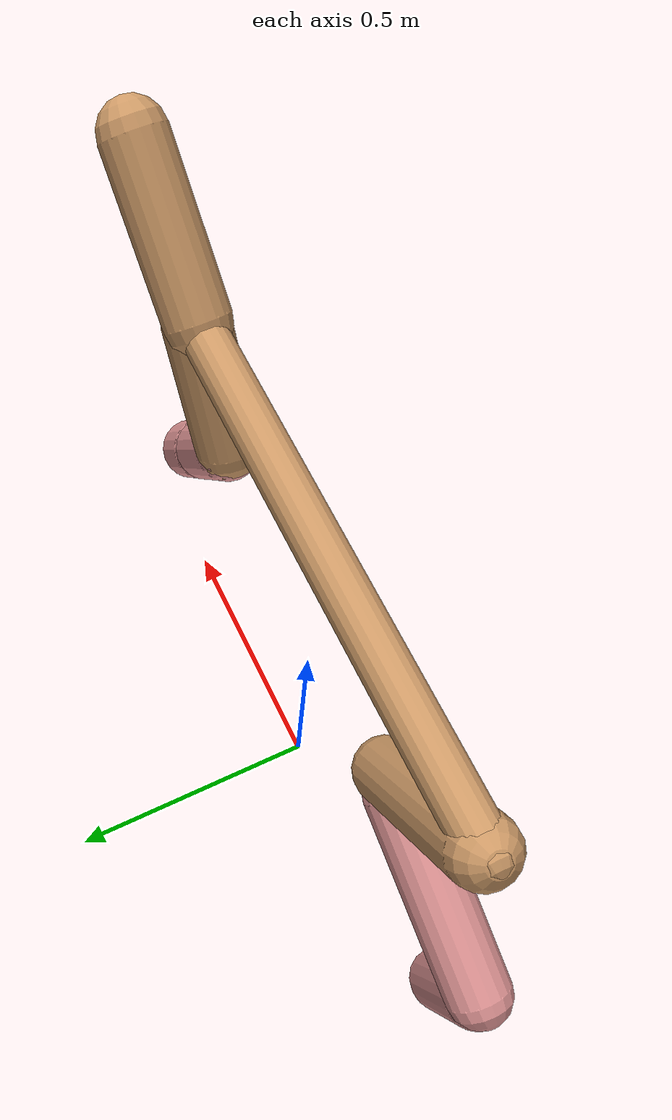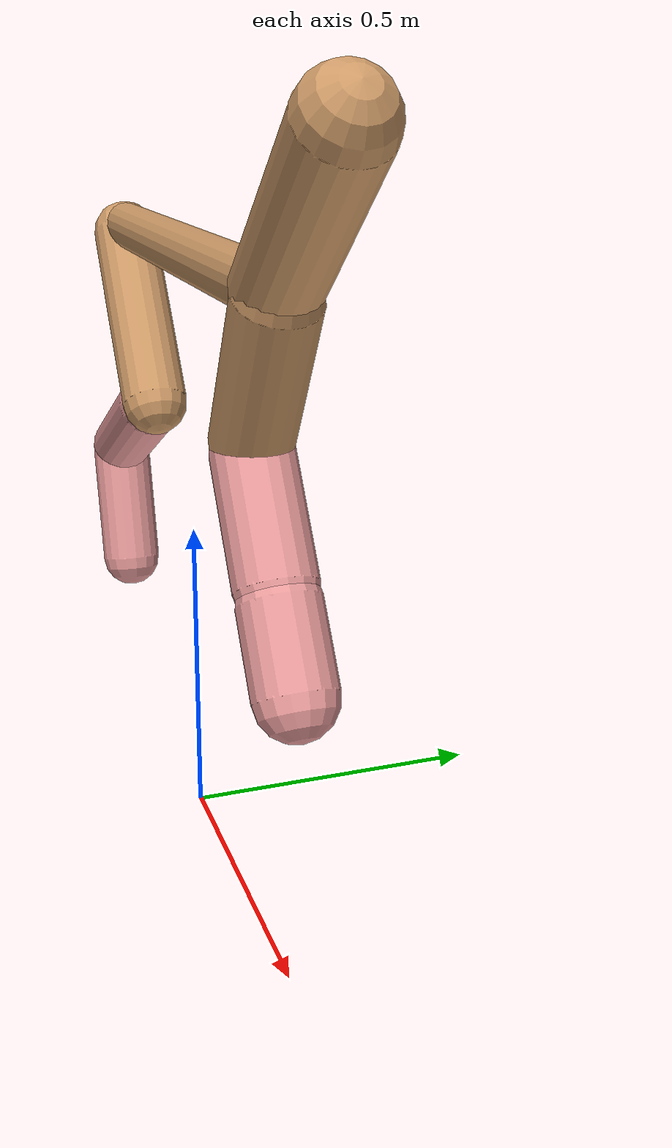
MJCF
<mujoco model="cheetah">
  <compiler angle="radian" coordinate="local" inertiafromgeom="true" settotalmass="14" />
  <default>
    <joint armature=".1" damping=".01" limited="true" solimplimit="0 .8 .03" solreflimit=".02 1" stiffness="8" />
    <geom conaffinity="0" condim="3" contype="1" friction="0.8 .1 .1" rgba="0.8 0.6 .4 1" solimp="0.0 0.8 0.01" solref="0.02 1" />
    <motor ctrllimited="true" ctrlrange="-1 1" />
  </default>
  <size nstack="300000" nuser_geom="1" />
  <option gravity="0 0 -9.81" timestep="0.01" />
  <worldbody>
    <body name="torso" pos="0.0 0.0 0.9428982663356844">
      <joint armature="0" axis="1 0 0" damping="0" limited="false" name="ignorex" pos="0 0 0" stiffness="0" type="slide" />
      <joint armature="0" axis="0 0 1" damping="0" limited="false" name="ignorez" pos="0 0 0" stiffness="0" type="slide" />
      <joint armature="0" axis="0 1 0" damping="0" limited="false" name="ignorey" pos="0 0 0" stiffness="0" type="hinge" />
      <geom fromto="-0.5 0.0 0.0 0.4618717647892218 0.0 0.0" name="torso" size="0.040038015361009184" type="capsule" />
      <geom axisangle="0 1 0 .87" name="head" pos="0.5618717647892219 0.0 0.1" size="0.05854183986374571 0.15" type="capsule" />

      <body name="bthigh" pos="-.5 0 0">
        <joint axis="0 1 0" damping="6" name="bthigh" pos="0 0 0" range="-.52 1.05" stiffness="240" type="hinge" />
        <geom axisangle="0 1 0 -3.8" name="bthigh" pos="0.11819844456153153 0.0 -0.15365797792999097" size="0.05740352854350866 0.17484766832091037" type="capsule" />
        <body name="bshin" pos="0.19639688912306305 0.0 -0.29731595585998194">
          <joint axis="0 1 0" damping="4.5" name="bshin" pos="0 0 0" range="-.785 .785" stiffness="180" type="hinge" />
          <geom axisangle="0 1 0 -2.03" name="bshin" pos="-0.1676171373801749 0.0 -0.08380856869008745" rgba="0.9 0.6 0.6 1" size="0.05740352854350866 0.18087689826301073" type="capsule" />
          <body name="bfoot" pos="-0.3352342747603498 0.0 -0.1676171373801749">
            <joint axis="0 1 0" damping="3" name="bfoot" pos="0 0 0" range="-.4 .785" stiffness="120" type="hinge" />
            <geom axisangle="0 1 0 -.27" name="bfoot" pos="0.03571719817333118 0.0 -0.11548560742710416" rgba="0.9 0.6 0.6 1" size="0.05740352854350866 0.11334952291148673" type="capsule" />
            <inertial mass="10" />
          </body>
        </body>
      </body>
      <body name="fthigh" pos="0.4618717647892219 0.0 0.0">
        <joint axis="0 1 0" damping="4.5" name="fthigh" pos="0 0 0" range="-1.5 0.8" stiffness="180" type="hinge" />
        <geom axisangle="0 1 0 .52" name="fthigh" pos="-0.0631402730318854 0.0 -0.10824046805466066" size="0.05816368698101738 0.11938594675893563" type="capsule" />
        <body name="fshin" pos="-0.1262805460637708 0.0 -0.21648093610932131">
          <joint axis="0 1 0" damping="3" name="fshin" pos="0 0 0" range="-1.2 1.1" stiffness="120" type="hinge" />
          <geom axisangle="0 1 0 -.6" name="fshin" pos="0.05864725297255037 0.0 -0.08120388873122358" rgba="0.9 0.6 0.6 1" size="0.05816368698101738 0.09514970192817425" type="capsule" />
          <body name="ffoot" pos="0.11729450594510074 0.0 -0.16240777746244717">
            <joint axis="0 1 0" damping="1.5" name="ffoot" pos="0 0 0" range="-3.1 -0.3" stiffness="60" type="hinge" />
            <geom axisangle="0 1 0 -.6" name="ffoot" pos="0.04112531440070963 0.0 -0.06397271128999277" rgba="0.9 0.6 0.6 1" size="0.05816368698101738 0.06283470882049244" type="capsule" />
            <inertial mass="10" />
          </body>
        </body>
      </body>
    </body>
  </worldbody>
  <actuator>
    <motor gear="120" joint="bthigh" name="bthigh" />
    <motor gear="90" joint="bshin" name="bshin" />
    <motor gear="60" joint="bfoot" name="bfoot" />
    <motor gear="120" joint="fthigh" name="fthigh" />
    <motor gear="60" joint="fshin" name="fshin" />
    <motor gear="30" joint="ffoot" name="ffoot" />
  </actuator>
</mujoco>
